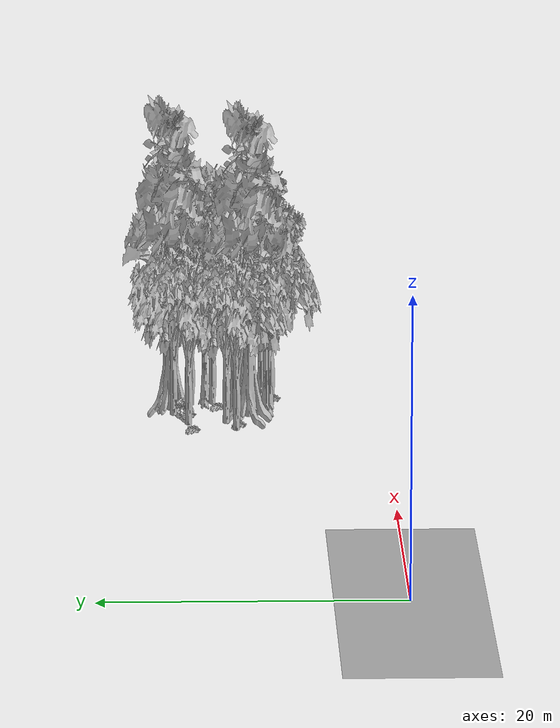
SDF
<sdf version="1.7">
 <world name="default">
  <model name="ground_plane">
   <static>1</static>
   <link name="link">
    <collision name="collision">
     <geometry><plane><normal>0 0 1</normal><size>100 100</size></plane></geometry>
     <surface><contact><ode><min_depth>0.01</min_depth><max_vel>0</max_vel></ode></contact></surface>
    </collision>
    <visual name="grass">
     <cast_shadows>0</cast_shadows>
     <geometry>
      <mesh>
       <scale>0.5814285714285714 0.18142857142857144 0.1</scale>
       <uri>file://grass_plane/meshes/grass_plane.dae</uri>
      </mesh>
     </geometry>
    </visual>
   </link>
  </model>
  <model name="Tree 11">
   <static>1</static>
   <pose>46.008525365228806 13.301327726597798 0 1.57079 -0 0</pose>
   <link name="link">
    <collision name="collision">
     <geometry><mesh><scale>3.5 5 3.5</scale><uri>model://tree_2/meshes/tree_2.obj</uri></mesh></geometry>
    </collision>
    <visual name="visual">
     <geometry><mesh><scale>3.5 5 3.5</scale><uri>model://tree_2/meshes/tree_2.obj</uri></mesh></geometry>
    </visual>
   </link>
  </model>
  <model name="Tree 70">
   <static>1</static>
   <pose>48.232878730443005 8.38321949942685 0 1.57079 -0 0</pose>
   <link name="link">
    <collision name="collision">
     <geometry><mesh><scale>3.5 5 3.5</scale><uri>model://tree_9/meshes/tree_9.obj</uri></mesh></geometry>
    </collision>
    <visual name="visual">
     <geometry><mesh><scale>3.5 5 3.5</scale><uri>model://tree_9/meshes/tree_9.obj</uri></mesh></geometry>
    </visual>
   </link>
  </model>
  <model name="Tree 76">
   <static>1</static>
   <pose>44.65820139416708 13.482372695852558 0 1.57079 -0 0</pose>
   <link name="link">
    <collision name="collision">
     <geometry><mesh><scale>3.5 5 3.5</scale><uri>model://tree_2/meshes/tree_2.obj</uri></mesh></geometry>
    </collision>
    <visual name="visual">
     <geometry><mesh><scale>3.5 5 3.5</scale><uri>model://tree_2/meshes/tree_2.obj</uri></mesh></geometry>
    </visual>
   </link>
  </model>
  <model name="Tree 164">
   <static>1</static>
   <pose>41.001972486771734 13.522102918039469 0 1.57079 -0 0</pose>
   <link name="link">
    <collision name="collision">
     <geometry><mesh><scale>3.5 5 3.5</scale><uri>model://tree_2/meshes/tree_2.obj</uri></mesh></geometry>
    </collision>
    <visual name="visual">
     <geometry><mesh><scale>3.5 5 3.5</scale><uri>model://tree_2/meshes/tree_2.obj</uri></mesh></geometry>
    </visual>
   </link>
  </model>
  <model name="Tree 166">
   <static>1</static>
   <pose>46.31727151989243 11.789425728078193 0 1.57079 -0 0</pose>
   <link name="link">
    <collision name="collision">
     <geometry><mesh><scale>3.5 5 3.5</scale><uri>model://tree_2/meshes/tree_2.obj</uri></mesh></geometry>
    </collision>
    <visual name="visual">
     <geometry><mesh><scale>3.5 5 3.5</scale><uri>model://tree_2/meshes/tree_2.obj</uri></mesh></geometry>
    </visual>
   </link>
  </model>
  <model name="Tree 187">
   <static>1</static>
   <pose>47.99625410284797 12.311673872776673 0 1.57079 -0 0</pose>
   <link name="link">
    <collision name="collision">
     <geometry><mesh><scale>3.5 5 3.5</scale><uri>model://tree_9/meshes/tree_9.obj</uri></mesh></geometry>
    </collision>
    <visual name="visual">
     <geometry><mesh><scale>3.5 5 3.5</scale><uri>model://tree_9/meshes/tree_9.obj</uri></mesh></geometry>
    </visual>
   </link>
  </model>
  <model name="Tree 194">
   <static>1</static>
   <pose>43.59430707196516 9.322750818135276 0 1.57079 -0 0</pose>
   <link name="link">
    <collision name="collision">
     <geometry><mesh><scale>3.5 5 3.5</scale><uri>model://tree_4/meshes/tree_4.obj</uri></mesh></geometry>
    </collision>
    <visual name="visual">
     <geometry><mesh><scale>3.5 5 3.5</scale><uri>model://tree_4/meshes/tree_4.obj</uri></mesh></geometry>
    </visual>
   </link>
  </model>
  <model name="Tree 214">
   <static>1</static>
   <pose>45.857892575439635 7.8176915075978535 0 1.57079 -0 0</pose>
   <link name="link">
    <collision name="collision">
     <geometry><mesh><scale>3.5 5 3.5</scale><uri>model://tree_9/meshes/tree_9.obj</uri></mesh></geometry>
    </collision>
    <visual name="visual">
     <geometry><mesh><scale>3.5 5 3.5</scale><uri>model://tree_9/meshes/tree_9.obj</uri></mesh></geometry>
    </visual>
   </link>
  </model>
  <model name="Tree 221">
   <static>1</static>
   <pose>45.39124304829575 14.744447320786964 0 1.57079 -0 0</pose>
   <link name="link">
    <collision name="collision">
     <geometry><mesh><scale>3.5 5 3.5</scale><uri>model://tree_4/meshes/tree_4.obj</uri></mesh></geometry>
    </collision>
    <visual name="visual">
     <geometry><mesh><scale>3.5 5 3.5</scale><uri>model://tree_4/meshes/tree_4.obj</uri></mesh></geometry>
    </visual>
   </link>
  </model>
  <model name="Tree 231">
   <static>1</static>
   <pose>43.48701706703146 14.539970495583471 0 1.57079 -0 0</pose>
   <link name="link">
    <collision name="collision">
     <geometry><mesh><scale>3.5 5 3.5</scale><uri>model://tree_2/meshes/tree_2.obj</uri></mesh></geometry>
    </collision>
    <visual name="visual">
     <geometry><mesh><scale>3.5 5 3.5</scale><uri>model://tree_2/meshes/tree_2.obj</uri></mesh></geometry>
    </visual>
   </link>
  </model>
  <model name="Tree 239">
   <static>1</static>
   <pose>45.91294077664021 7.695747681847649 0 1.57079 -0 0</pose>
   <link name="link">
    <collision name="collision">
     <geometry><mesh><scale>3.5 5 3.5</scale><uri>model://tree_2/meshes/tree_2.obj</uri></mesh></geometry>
    </collision>
    <visual name="visual">
     <geometry><mesh><scale>3.5 5 3.5</scale><uri>model://tree_2/meshes/tree_2.obj</uri></mesh></geometry>
    </visual>
   </link>
  </model>
  <model name="Tree 257">
   <static>1</static>
   <pose>45.69576118059244 8.068093825358869 0 1.57079 -0 0</pose>
   <link name="link">
    <collision name="collision">
     <geometry><mesh><scale>3.5 5 3.5</scale><uri>model://tree_9/meshes/tree_9.obj</uri></mesh></geometry>
    </collision>
    <visual name="visual">
     <geometry><mesh><scale>3.5 5 3.5</scale><uri>model://tree_9/meshes/tree_9.obj</uri></mesh></geometry>
    </visual>
   </link>
  </model>
  <model name="Tree 308">
   <static>1</static>
   <pose>46.58175165088508 14.457920517290699 0 1.57079 -0 0</pose>
   <link name="link">
    <collision name="collision">
     <geometry><mesh><scale>3.5 5 3.5</scale><uri>model://tree_9/meshes/tree_9.obj</uri></mesh></geometry>
    </collision>
    <visual name="visual">
     <geometry><mesh><scale>3.5 5 3.5</scale><uri>model://tree_9/meshes/tree_9.obj</uri></mesh></geometry>
    </visual>
   </link>
  </model>
  <model name="Tree 318">
   <static>1</static>
   <pose>45.76472650519675 10.354523201036493 0 1.57079 -0 0</pose>
   <link name="link">
    <collision name="collision">
     <geometry><mesh><scale>3.5 5 3.5</scale><uri>model://tree_9/meshes/tree_9.obj</uri></mesh></geometry>
    </collision>
    <visual name="visual">
     <geometry><mesh><scale>3.5 5 3.5</scale><uri>model://tree_9/meshes/tree_9.obj</uri></mesh></geometry>
    </visual>
   </link>
  </model>
  <model name="Tree 334">
   <static>1</static>
   <pose>39.52416344228797 10.227580358667588 0 1.57079 -0 0</pose>
   <link name="link">
    <collision name="collision">
     <geometry><mesh><scale>3.5 5 3.5</scale><uri>model://tree_2/meshes/tree_2.obj</uri></mesh></geometry>
    </collision>
    <visual name="visual">
     <geometry><mesh><scale>3.5 5 3.5</scale><uri>model://tree_2/meshes/tree_2.obj</uri></mesh></geometry>
    </visual>
   </link>
  </model>
  <model name="Tree 353">
   <static>1</static>
   <pose>48.281796935268076 8.940239043357614 0 1.57079 -0 0</pose>
   <link name="link">
    <collision name="collision">
     <geometry><mesh><scale>3.5 5 3.5</scale><uri>model://tree_9/meshes/tree_9.obj</uri></mesh></geometry>
    </collision>
    <visual name="visual">
     <geometry><mesh><scale>3.5 5 3.5</scale><uri>model://tree_9/meshes/tree_9.obj</uri></mesh></geometry>
    </visual>
   </link>
  </model>
  <model name="Tree 420">
   <static>1</static>
   <pose>41.33265322995068 10.90514965528861 0 1.57079 -0 0</pose>
   <link name="link">
    <collision name="collision">
     <geometry><mesh><scale>3.5 5 3.5</scale><uri>model://tree_2/meshes/tree_2.obj</uri></mesh></geometry>
    </collision>
    <visual name="visual">
     <geometry><mesh><scale>3.5 5 3.5</scale><uri>model://tree_2/meshes/tree_2.obj</uri></mesh></geometry>
    </visual>
   </link>
  </model>
  <model name="Bush 68">
   <static>1</static>
   <pose>42.63393237622202 14.135778965867392 0 1.57079 -0 0</pose>
   <link name="link">
    <collision name="collision">
     <geometry><mesh><scale>2 2 2</scale><uri>model://bush_5/meshes/bush_5.obj</uri></mesh></geometry>
     <surface><contact><collide_without_contact>false</collide_without_contact></contact></surface>
    </collision>
    <visual name="visual">
     <geometry><mesh><scale>2 2 2</scale><uri>model://bush_5/meshes/bush_5.obj</uri></mesh></geometry>
    </visual>
   </link>
  </model>
  <model name="Bush 190">
   <static>1</static>
   <pose>40.476708438684156 10.04291139536696 0 1.57079 -0 0</pose>
   <link name="link">
    <collision name="collision">
     <geometry><mesh><scale>2 2 2</scale><uri>model://bush_2/meshes/bush_2.obj</uri></mesh></geometry>
     <surface><contact><collide_without_contact>false</collide_without_contact></contact></surface>
    </collision>
    <visual name="visual">
     <geometry><mesh><scale>2 2 2</scale><uri>model://bush_2/meshes/bush_2.obj</uri></mesh></geometry>
    </visual>
   </link>
  </model>
  <model name="Bush 252">
   <static>1</static>
   <pose>39.27633456428684 13.256016867603076 0 1.57079 -0 0</pose>
   <link name="link">
    <collision name="collision">
     <geometry><mesh><scale>2 2 2</scale><uri>model://bush_2/meshes/bush_2.obj</uri></mesh></geometry>
     <surface><contact><collide_without_contact>false</collide_without_contact></contact></surface>
    </collision>
    <visual name="visual">
     <geometry><mesh><scale>2 2 2</scale><uri>model://bush_2/meshes/bush_2.obj</uri></mesh></geometry>
    </visual>
   </link>
  </model>
  <model name="Bush 254">
   <static>1</static>
   <pose>43.14329426712827 13.49777837179166 0 1.57079 -0 0</pose>
   <link name="link">
    <collision name="collision">
     <geometry><mesh><scale>2 2 2</scale><uri>model://bush_2/meshes/bush_2.obj</uri></mesh></geometry>
     <surface><contact><collide_without_contact>false</collide_without_contact></contact></surface>
    </collision>
    <visual name="visual">
     <geometry><mesh><scale>2 2 2</scale><uri>model://bush_2/meshes/bush_2.obj</uri></mesh></geometry>
    </visual>
   </link>
  </model>
  <model name="Bush 264">
   <static>1</static>
   <pose>47.15200773651263 7.508531078832018 0 1.57079 -0 0</pose>
   <link name="link">
    <collision name="collision">
     <geometry><mesh><scale>2 2 2</scale><uri>model://bush_2/meshes/bush_2.obj</uri></mesh></geometry>
     <surface><contact><collide_without_contact>false</collide_without_contact></contact></surface>
    </collision>
    <visual name="visual">
     <geometry><mesh><scale>2 2 2</scale><uri>model://bush_2/meshes/bush_2.obj</uri></mesh></geometry>
    </visual>
   </link>
  </model>
  <model name="Bush 277">
   <static>1</static>
   <pose>45.05571861473409 11.456459742019568 0 1.57079 -0 0</pose>
   <link name="link">
    <collision name="collision">
     <geometry><mesh><scale>2 2 2</scale><uri>model://bush_2/meshes/bush_2.obj</uri></mesh></geometry>
     <surface><contact><collide_without_contact>false</collide_without_contact></contact></surface>
    </collision>
    <visual name="visual">
     <geometry><mesh><scale>2 2 2</scale><uri>model://bush_2/meshes/bush_2.obj</uri></mesh></geometry>
    </visual>
   </link>
  </model>
 </world>
</sdf>
